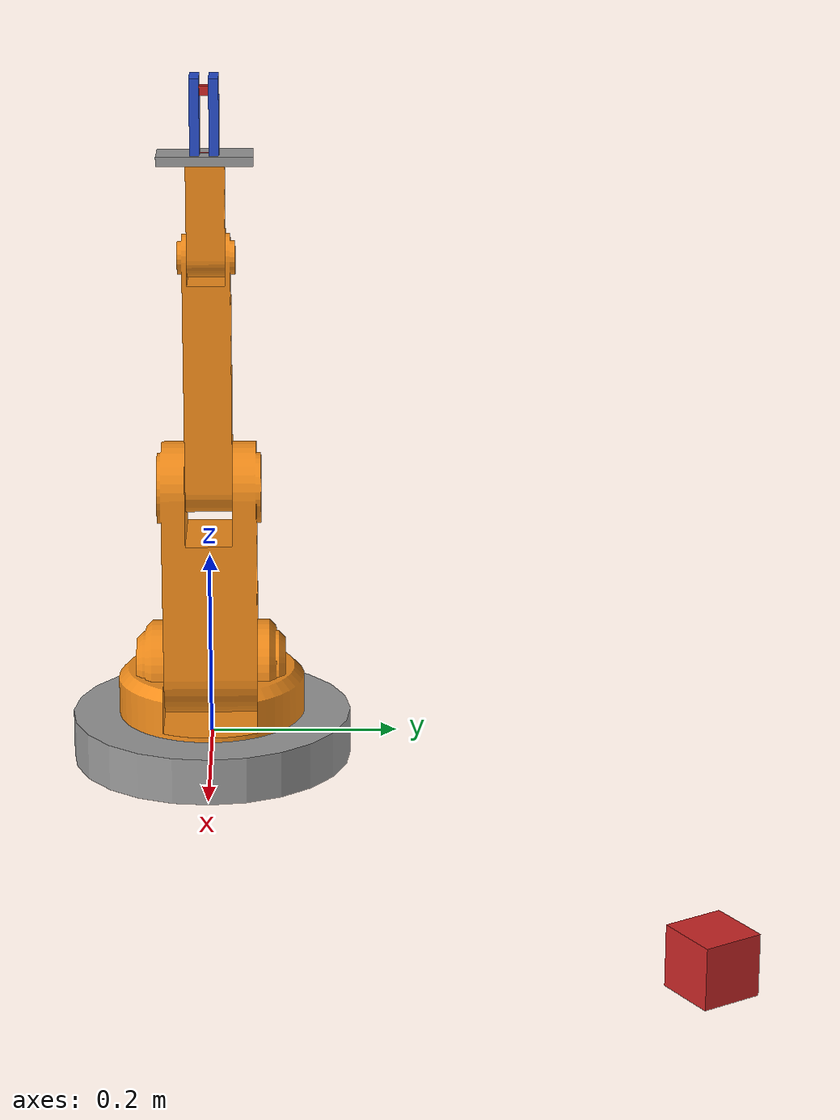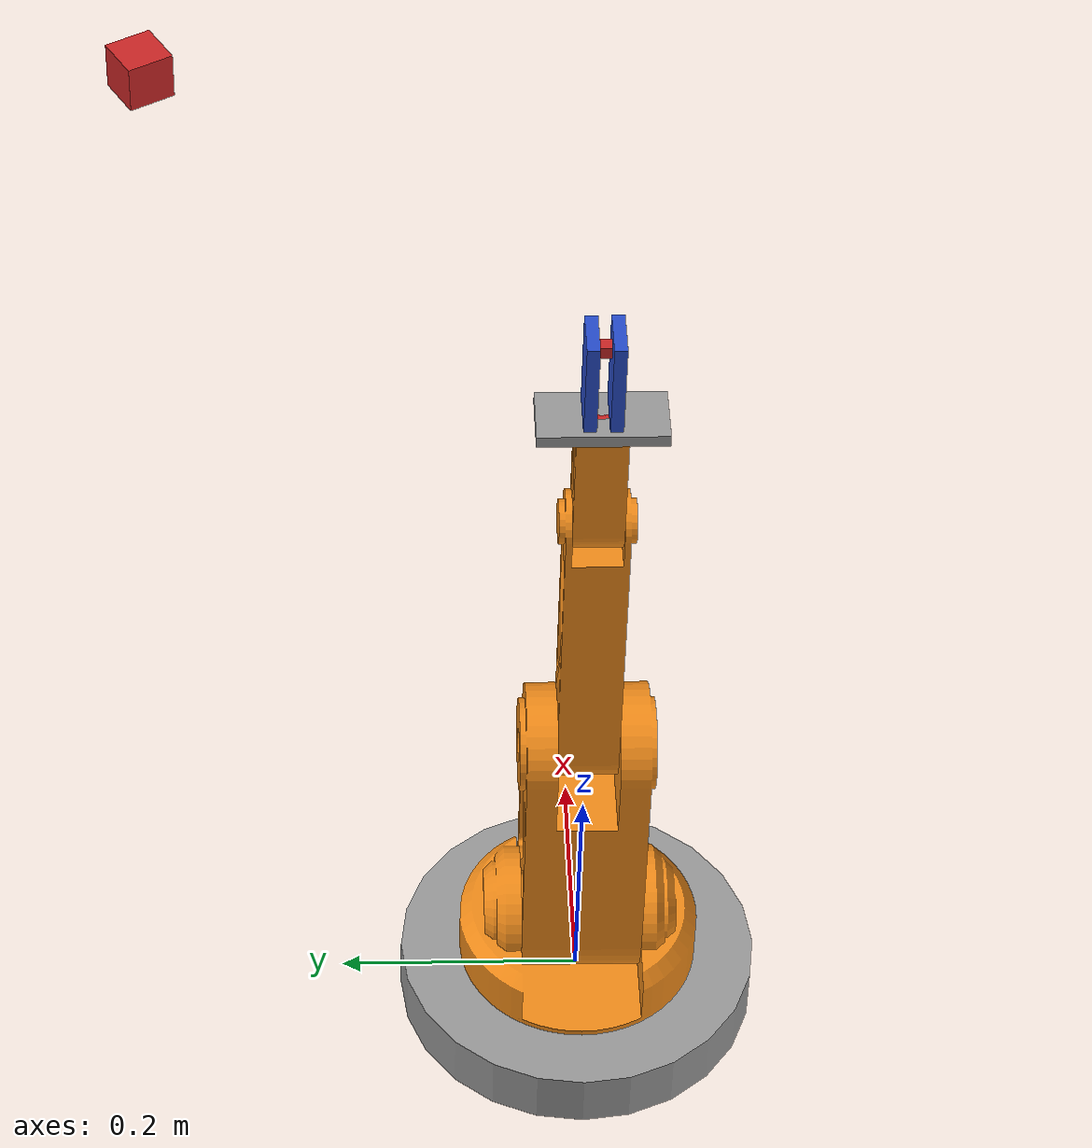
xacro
<?xml version="1.0"?>
<robot xmlns:xacro="http://www.ros.org/wiki/xacro" name="mogi_arm">
    <xacro:arg name="initial_positions_file" default="initial_positions.yaml" />

    <!-- Import mogi_arm urdf file -->
    <xacro:include filename="$(find bme_ros2_simple_arm)/urdf/mogi_arm.xacro" />

    <!-- Import control_xacro -->
    <xacro:include filename="mogi_arm.ros2_control.xacro" />

    <xacro:mogi_arm_ros2_control name="FakeSystem" initial_positions_file="$(arg initial_positions_file)"/>

</robot>

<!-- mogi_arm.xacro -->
<robot name="mogi_arm" xmlns:xacro="http://www.ros.org/wiki/xacro">

  <!-- STEP 3 - RViz colors -->
  <xacro:include filename="$(find bme_ros2_simple_arm)/urdf/materials.xacro" />

  <!-- STEP 8 - Gazebo plugin -->
  <xacro:include filename="$(find bme_ros2_simple_arm)/urdf/mogi_arm.gazebo" />

  <!-- STEP 1 - Global reference link -->
  <link name="world"/>

  <!-- STEP 2 - Arm base link -->
  <joint name="fixed_base" type="fixed">
    <parent link="world"/>
    <child link="base_link"/>
  </joint>

  <link name="base_link">
    <inertial>
      <mass value="2"/>
      <origin xyz="0.0 0.0 0.0"/>
      <inertia ixx="0.0117" ixy="0.0" ixz="0.0"
               iyy="0.0117" iyz="0.0"
               izz="0.0225"
      />
    </inertial>
    <collision>
      <geometry>
        <cylinder radius="0.15" length="0.05"/>
      </geometry>
      <origin xyz="0.0 0.0 0.0" rpy="0.0 0.0 0.0"/>
    </collision>
    <visual>
      <geometry>
        <cylinder radius="0.15" length="0.05"/>
      </geometry>
      <material name="grey"/>
      <origin xyz="0.0 0.0 0.0" rpy="0.0 0.0 0.0"/>
    </visual>
  </link>

  <!-- STEP 4 - Shoulder -->
  <joint name="shoulder_pan_joint" type="revolute">
    <limit lower="-3.14" upper="3.14" effort="330.0" velocity="3.14"/>
    <parent link="base_link"/>
    <child link="shoulder_link"/>
    <axis xyz="0 0 1"/>
    <origin xyz="0.0 0.0 0.05" rpy="0.0 0.0 0.0"/>
    <dynamics damping="0.0" friction="0.0"/>
  </joint>

  <!-- Shoulder link -->
  <link name="shoulder_link">
    <inertial>
      <mass value="0.5"/>
      <origin xyz="0.0 0.0 0.0" rpy="0.0 0.0 0.0"/>
      <inertia ixx="0.0014" ixy="0.0" ixz="0.0"
               iyy="0.0014" iyz="0.0"
               izz="0.0025"
      />
    </inertial>
    <collision>
      <geometry>
        <cylinder radius="0.1" length="0.05"/>
      </geometry>
      <origin xyz="0.0 0.0 0.0" rpy="0.0 0.0 0.0"/>
    </collision>
    <visual>
      <geometry>
        <mesh filename = "package://bme_ros2_simple_arm/meshes/shoulder.dae"/>
      </geometry>
      <material name="orange"/>
      <origin xyz="0.0 0.0 0.0" rpy="0.0 0.0 0.0"/>
    </visual>
  </link>

  <!-- Shoulder lift joint -->
  <joint name="shoulder_lift_joint" type="revolute">
    <limit lower="-1.5708" upper="1.5708" effort="330.0" velocity="3.14"/>
    <parent link="shoulder_link"/>
    <child link="upper_arm_link"/>
    <axis xyz="0 1 0"/>
    <origin xyz="0.0 0.0 0.025" rpy="0.0 0.0 0.0"/>
    <dynamics damping="0.0" friction="0.0"/>
  </joint>

  <!-- Upper arm link -->
  <link name="upper_arm_link">
    <inertial>
      <mass value="0.3"/>
      <origin xyz="0.0 0.0 0.1" rpy="0.0 0.0 0.0"/>
      <inertia ixx="0.0012" ixy="0.0" ixz="0.0"
               iyy="0.0012" iyz="0.0"
               izz="0.0004"
      />
    </inertial>
    <collision>
      <geometry>
        <cylinder radius="0.05" length="0.2"/>
      </geometry>
      <origin xyz="0.0 0.0 0.1" rpy="0.0 0.0 0.0"/>
    </collision>
    <visual>
      <geometry>
        <mesh filename = "package://bme_ros2_simple_arm/meshes/upper_arm.dae"/>
      </geometry>
      <material name="orange"/>
      <origin xyz="0.0 0.0 0.1" rpy="0.0 0.0 0.0"/>
    </visual>
  </link>

  <!-- STEP 5 - Elbow -->
  <joint name="elbow_joint" type="revolute">
    <limit lower="-2.3562" upper="2.3562" effort="150.0" velocity="3.14"/>
    <parent link="upper_arm_link"/>
    <child link="forearm_link"/>
    <axis xyz="0 1 0"/>
    <origin xyz="0.0 0.0 0.2" rpy="0.0 0.0 0.0"/>
    <dynamics damping="0.0" friction="0.0"/>
  </joint>

  <!-- Forearm link -->
  <link name="forearm_link">
    <inertial>
      <mass value="0.2"/>
      <origin xyz="0.0 0.0 0.125" rpy="0.0 0.0 0.0"/>
      <inertia ixx="0.0011" ixy="0.0" ixz="0.0"
               iyy="0.0011" iyz="0.0"
               izz="0.0004"
      />
    </inertial>
    <collision>
      <geometry>
        <cylinder radius="0.025" length="0.25"/>
      </geometry>
      <origin xyz="0.0 0.0 0.125" rpy="0.0 0.0 0.0"/>
    </collision>
    <visual>
      <geometry>
        <mesh filename = "package://bme_ros2_simple_arm/meshes/forearm.dae"/>
      </geometry>
      <material name="orange"/>
      <origin xyz="0.0 0.0 0.125" rpy="0.0 0.0 0.0"/>
    </visual>
  </link>

  <!-- STEP 6 - Wrist -->
  <joint name="wrist_joint" type="revolute">
    <limit lower="-2.3562" upper="2.3562" effort="54.0" velocity="3.14"/>
    <parent link="forearm_link"/>
    <child link="wrist_link"/>
    <axis xyz="0 1 0"/>
    <origin xyz="0.0 0.0 0.25" rpy="0.0 0.0 0.0"/>
    <dynamics damping="0.0" friction="0.0"/>
  </joint>

  <!-- Wrist link -->
  <link name="wrist_link">
    <inertial>
      <mass value="0.1"/>
      <origin xyz="0.0 0.0 0.05" rpy="0.0 0.0 0.0"/>
      <inertia ixx="0.00009" ixy="0.0" ixz="0.0"
               iyy="0.00009" iyz="0.0"
               izz="0.00002"
      />
    </inertial>
    <collision>
      <geometry>
        <cylinder radius="0.02" length="0.1"/>
      </geometry>
      <origin xyz="0.0 0.0 0.05" rpy="0.0 0.0 0.0"/>
    </collision>
    <visual>
      <geometry>
        <mesh filename = "package://bme_ros2_simple_arm/meshes/wrist.dae"/>
      </geometry>
      <material name="orange"/>
      <origin xyz="0.0 0.0 0.05" rpy="0.0 0.0 0.0"/>
    </visual>
  </link>

  <!-- STEP 7 - Gripper -->
  <joint name="gripper_base_joint" type="fixed">
    <parent link="wrist_link"/>
    <child link="gripper_base"/>
    <origin xyz="0.0 0 0.105" rpy="0.0 0 0"/>
  </joint>

  <!-- Gripper base link -->
  <link name="gripper_base">
    <inertial>
      <mass value="0.1"/>
      <origin xyz="0.0 0.0 0.0" rpy="0.0 0.0 0.0"/>
      <inertia ixx="0.00009" ixy="0.0" ixz="0.0"
               iyy="0.00009" iyz="0.0"
               izz="0.00002"
      />
    </inertial>
    <collision>
      <geometry>
        <box size=".05 .1 .01"/>
      </geometry>
      <origin xyz="0.0 0.0 0.0" rpy="0.0 0.0 0.0"/>
    </collision>
    <visual>
      <geometry>
        <box size=".05 .1 .01"/>
      </geometry>
      <material name="grey"/>
      <origin xyz="0.0 0.0 0.0" rpy="0.0 0.0 0.0"/>
    </visual>
  </link>

  <!-- Left finger joint -->
  <joint name="left_finger_joint" type="prismatic">
    <limit lower="0" upper="0.04" effort="100.0" velocity="4.0"/>
    <parent link="gripper_base"/>
    <child link="left_finger"/>
    <axis xyz="0 1 0"/>
    <origin xyz="0.0 0.01 0.045" />
  </joint>

  <!-- Left finger link -->
  <link name="left_finger">
    <inertial>
      <mass value="0.1"/>
      <origin xyz="0.0 0.0 0.0" rpy="0.0 0.0 0.0"/>
      <inertia ixx="0.00009" ixy="0.0" ixz="0.0"
               iyy="0.00009" iyz="0.0"
               izz="0.00002"
      />
    </inertial>
    <collision>
      <geometry>
        <box size=".04 .01 .08"/>
      </geometry>
      <origin xyz="0.0 0.0 0.0" rpy="0.0 0.0 0.0"/>
    </collision>
    <visual>
      <geometry>
        <box size=".04 .01 .08"/>
      </geometry>
      <material name="blue"/>
      <origin xyz="0.0 0.0 0.0" rpy="0.0 0.0 0.0"/>
    </visual>
  </link>

  <gazebo reference="left_finger">
    <kp>1000000.0</kp>
    <kd>100.0</kd>
    <mu1>15</mu1>
    <mu2>15</mu2>
    <fdir1>1 0 0</fdir1>
    <maxVel>1.0</maxVel>
    <minDepth>0.002</minDepth>
  </gazebo>

  <!-- Right finger joint -->
  <joint name="right_finger_joint" type="prismatic">
    <limit lower="0" upper="0.04" effort="100.0" velocity="4.0"/>
    <parent link="gripper_base"/>
    <child link="right_finger"/>
    <axis xyz="0 -1 0"/>
    <origin xyz="0.0 -0.01 0.045" />
  </joint>

  <!-- Right finger link -->
  <link name="right_finger">
    <inertial>
      <mass value="0.1"/>
      <origin xyz="0.0 0.0 0.0" rpy="0.0 0.0 0.0"/>
      <inertia ixx="0.00009" ixy="0.0" ixz="0.0"
               iyy="0.00009" iyz="0.0"
               izz="0.00002"
      />
    </inertial>
    <collision>
      <geometry>
        <box size=".04 .01 .08"/>
      </geometry>
      <origin xyz="0.0 0.0 0.0" rpy="0.0 0.0 0.0"/>
    </collision>
    <visual>
      <geometry>
        <box size=".04 .01 .08"/>
      </geometry>
      <material name="blue"/>
      <origin xyz="0.0 0.0 0.0" rpy="0.0 0.0 0.0"/>
    </visual>
  </link>

  <gazebo reference="right_finger">
    <kp>1000000.0</kp>
    <kd>100.0</kd>
    <mu1>15</mu1>
    <mu2>15</mu2>
    <fdir1>1 0 0</fdir1>
    <maxVel>1.0</maxVel>
    <minDepth>0.002</minDepth>
  </gazebo>

  <!-- STEP 13 - Virtual roll joint -->
  <joint name="virtual_roll_joint" type="revolute">
    <limit lower="-3.1415" upper="3.1415" effort="54.0" velocity="3.14"/>
    <parent link="wrist_link"/>
    <child link="virtual_roll_link"/>
    <axis xyz="0 0 1"/>
    <origin xyz="0.0 0.0 0.175" rpy="0 0 0"/>
    <dynamics damping="0.0" friction="0.0"/>
  </joint>

  <!-- Virtual roll link -->
  <link name="virtual_roll_link">
    <visual>
      <origin xyz="0 0 0" rpy="0 0 0"/>
      <geometry>
        <box size="0.01 0.01 0.01" />
      </geometry>
      <material name="red"/>
     </visual>

    <inertial>
      <origin xyz="0 0 0" />
      <mass value="1.0e-03" />
      <inertia ixx="1.0e-03" ixy="0.0" ixz="0.0"
               iyy="1.0e-03" iyz="0.0"
               izz="1.0e-03" />
    </inertial>
  </link>

  <!-- Virtual yaw joint -->
  <joint name="virtual_yaw_joint" type="revolute">
    <limit lower="-3.1415" upper="3.1415" effort="54.0" velocity="3.14"/>
    <parent link="virtual_roll_link"/>
    <child link="virtual_yaw_link"/>
    <axis xyz="1 0 0"/>
    <origin xyz="0.0 0.0 0.0" rpy="0 0 0"/>
    <dynamics damping="0.0" friction="0.0"/>
  </joint>

  <!-- Virtual yaw link -->
  <link name="virtual_yaw_link">
    <visual>
      <origin xyz="0 0 0" rpy="0 0 0"/>
      <geometry>
        <box size="0.01 0.01 0.01" />
      </geometry>
      <material name="red"/>
     </visual>

    <inertial>
      <origin xyz="0 0 0" />
      <mass value="1.0e-03" />
      <inertia ixx="1.0e-03" ixy="0.0" ixz="0.0"
               iyy="1.0e-03" iyz="0.0"
               izz="1.0e-03" />
    </inertial>
  </link>

  <!-- STEP 9 - ROS2 control -->
  <ros2_control name="GazeboSystem" type="system">
    <hardware>
      <plugin>gz_ros2_control/GazeboSimSystem</plugin>
    </hardware>
    <joint name="shoulder_pan_joint">
      <command_interface name="position">
        <param name="min">-2</param>
        <param name="max">2</param>
      </command_interface>
      <state_interface name="position">
        <param name="initial_value">0.0</param>
      </state_interface>
      <state_interface name="velocity"/>
      <state_interface name="effort"/>
    </joint>
    <joint name="shoulder_lift_joint">
      <command_interface name="position">
        <param name="min">-2</param>
        <param name="max">2</param>
      </command_interface>
      <state_interface name="position">
        <param name="initial_value">0.0</param>
      </state_interface>
      <state_interface name="velocity"/>
      <state_interface name="effort"/>
    </joint>
    <joint name="elbow_joint">
      <command_interface name="position">
        <param name="min">-2</param>
        <param name="max">2</param>
      </command_interface>
      <state_interface name="position">
        <param name="initial_value">0.0</param>
      </state_interface>
      <state_interface name="velocity"/>
      <state_interface name="effort"/>
    </joint>
    <joint name="wrist_joint">
      <command_interface name="position">
        <param name="min">-2</param>
        <param name="max">2</param>
      </command_interface>
      <state_interface name="position">
        <param name="initial_value">0.0</param>
      </state_interface>
      <state_interface name="velocity"/>
      <state_interface name="effort"/>
    </joint>
    <joint name="virtual_roll_joint">
      <command_interface name="position">
        <param name="min">-2</param>
        <param name="max">2</param>
      </command_interface>
      <state_interface name="position">
        <param name="initial_value">0.0</param>
      </state_interface>
      <state_interface name="velocity"/>
      <state_interface name="effort"/>
    </joint>
    <joint name="virtual_yaw_joint">
      <command_interface name="position">
        <param name="min">-2</param>
        <param name="max">2</param>
      </command_interface>
      <state_interface name="position">
        <param name="initial_value">0.0</param>
      </state_interface>
      <state_interface name="velocity"/>
      <state_interface name="effort"/>
    </joint>
    <joint name="left_finger_joint">
      <command_interface name="position">
        <param name="min">-2</param>
        <param name="max">2</param>
      </command_interface>
      <state_interface name="position">
        <param name="initial_value">0.0</param>
      </state_interface>
      <state_interface name="velocity"/>
      <state_interface name="effort"/>
    </joint>
    <joint name="right_finger_joint">
      <command_interface name="position">
        <param name="min">-2</param>
        <param name="max">2</param>
      </command_interface>
      <state_interface name="position">
        <param name="initial_value">0.0</param>
      </state_interface>
      <state_interface name="velocity"/>
      <state_interface name="effort"/>
    </joint>
  </ros2_control>

  <!-- STEP 10 - End effector -->
  <joint name="end_effector_joint" type="fixed">
    <origin xyz="0.0 0.0 0.0" rpy="0 0 0"/>
    <parent link="virtual_yaw_link"/>
    <child link="end_effector_link"/>
  </joint>

  <!-- End effector link -->
  <link name="end_effector_link">
    <visual>
      <origin xyz="0 0 0" rpy="0 0 0"/>
      <geometry>
        <box size="0.01 0.01 0.01" />
      </geometry>
      <material name="red"/>
     </visual>

    <inertial>
      <origin xyz="0 0 0" />
      <mass value="1.0e-03" />
      <inertia ixx="1.0e-03" ixy="0.0" ixz="0.0"
               iyy="1.0e-03" iyz="0.0"
               izz="1.0e-03" />
    </inertial>
  </link>

  <!-- STEP 11 - Gripper camera -->
  <joint type="fixed" name="gripper_camera_joint">
    <origin xyz="0.0 0.0 0.0" rpy="0 -1.5707 0"/>
    <child link="gripper_camera_link"/>
    <parent link="gripper_base"/>
  </joint>

  <link name='gripper_camera_link'>
    <pose>0 0 0 0 0 0</pose>
    <inertial>
      <mass value="1.0e-03"/>
      <origin xyz="0 0 0" rpy="0 0 0"/>
      <inertia
          ixx="1e-6" ixy="0" ixz="0"
          iyy="1e-6" iyz="0"
          izz="1e-6"
      />
    </inertial>

    <visual>
      <origin xyz="0 0 0" rpy="0 0 0"/>
      <geometry>
        <box size=".01 .01 .01"/>
      </geometry>
      <material name="red"/>
    </visual>
  </link>

  <joint type="fixed" name="gripper_camera_optical_joint">
    <origin xyz="0 0 0" rpy="-1.5707 0 -1.5707"/>
    <child link="gripper_camera_link_optical"/>
    <parent link="gripper_camera_link"/>
  </joint>

  <link name="gripper_camera_link_optical">
  </link>

  <!-- STEP 12 - Table camera -->
  <joint type="fixed" name="table_camera_joint">
    <origin xyz="1.0 0.4 0.2" rpy="0 0 3.6652"/>
    <child link="table_camera_link"/>
    <parent link="world"/>
  </joint>

  <link name='table_camera_link'>
    <pose>0 0 0 0 0 0</pose>
    <inertial>
      <mass value="1.0e-03"/>
      <origin xyz="0 0 0" rpy="0 0 0"/>
      <inertia
          ixx="1e-6" ixy="0" ixz="0"
          iyy="1e-6" iyz="0"
          izz="1e-6"
      />
    </inertial>

    <visual>
      <origin xyz="0 0 0" rpy="0 0 0"/>
      <geometry>
        <box size=".05 .05 .05"/>
      </geometry>
      <material name="red"/>
    </visual>
  </link>

  <joint type="fixed" name="table_camera_optical_joint">
    <origin xyz="0 0 0" rpy="-1.5707 0 -1.5707"/>
    <child link="table_camera_link_optical"/>
    <parent link="table_camera_link"/>
  </joint>

  <link name="table_camera_link_optical">
  </link>

</robot>
